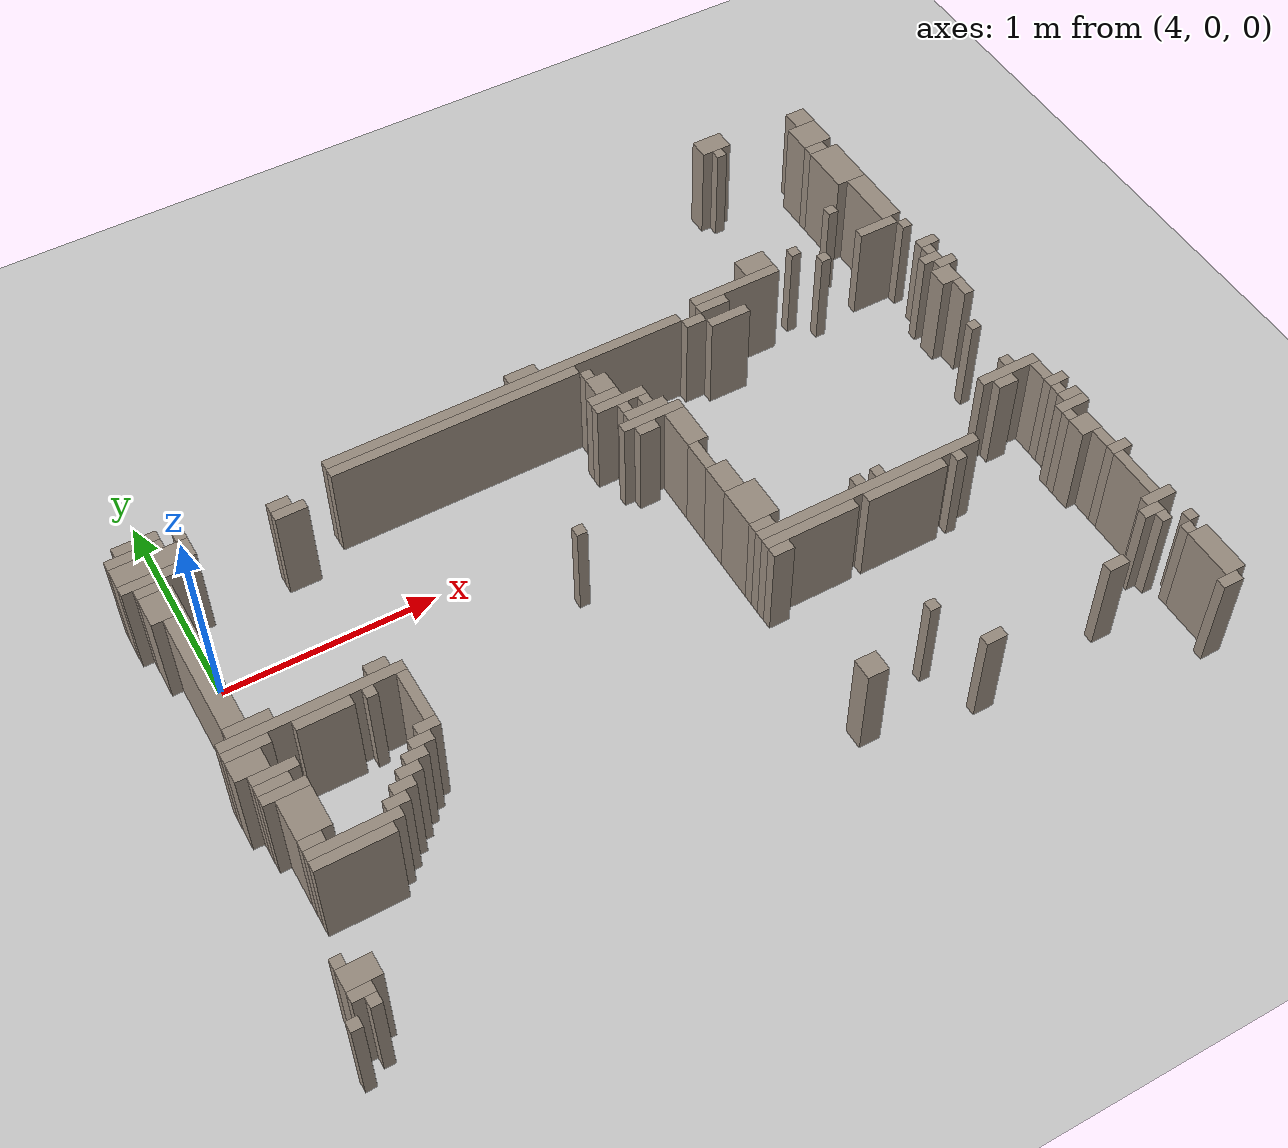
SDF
<sdf version="1.8">
 <world name="sala_real">
  <model name="ground_plane">
   <static>true</static>
   <link name="link">
    <collision name="col">
     <geometry><plane><normal>0 0 1</normal><size>100 100</size></plane></geometry>
    </collision>
    <visual name="vis">
     <geometry><plane><normal>0 0 1</normal><size>100 100</size></plane></geometry>
     <material><ambient>0.8 0.8 0.8 1</ambient><diffuse>0.8 0.8 0.8 1</diffuse></material>
    </visual>
   </link>
  </model>
  <model name="wall_123">
   <static>true</static>
   <pose>7.690 1.262 0.250 0 0 0</pose>
   <link name="link">
    <collision name="col"><geometry><box><size>0.150 0.150 0.500</size></box></geometry></collision>
    <visual name="vis">
     <geometry><box><size>0.150 0.150 0.500</size></box></geometry>
     <material><ambient>0.6 0.55 0.5 1</ambient><diffuse>0.6 0.55 0.5 1</diffuse></material>
    </visual>
   </link>
  </model>
  <model name="wall_131">
   <static>true</static>
   <pose>7.715 1.387 0.250 0 0 0</pose>
   <link name="link">
    <collision name="col"><geometry><box><size>0.100 0.100 0.500</size></box></geometry></collision>
    <visual name="vis">
     <geometry><box><size>0.100 0.100 0.500</size></box></geometry>
     <material><ambient>0.6 0.55 0.5 1</ambient><diffuse>0.6 0.55 0.5 1</diffuse></material>
    </visual>
   </link>
  </model>
  <model name="wall_142">
   <static>true</static>
   <pose>7.740 0.512 0.250 0 0 0</pose>
   <link name="link">
    <collision name="col"><geometry><box><size>0.050 0.050 0.500</size></box></geometry></collision>
    <visual name="vis">
     <geometry><box><size>0.050 0.050 0.500</size></box></geometry>
     <material><ambient>0.6 0.55 0.5 1</ambient><diffuse>0.6 0.55 0.5 1</diffuse></material>
    </visual>
   </link>
  </model>
  <model name="wall_146">
   <static>true</static>
   <pose>7.715 0.737 0.250 0 0 0</pose>
   <link name="link">
    <collision name="col"><geometry><box><size>0.100 0.300 0.500</size></box></geometry></collision>
    <visual name="vis">
     <geometry><box><size>0.100 0.300 0.500</size></box></geometry>
     <material><ambient>0.6 0.55 0.5 1</ambient><diffuse>0.6 0.55 0.5 1</diffuse></material>
    </visual>
   </link>
  </model>
  <model name="wall_148">
   <static>true</static>
   <pose>7.765 0.362 0.250 0 0 0</pose>
   <link name="link">
    <collision name="col"><geometry><box><size>0.100 0.050 0.500</size></box></geometry></collision>
    <visual name="vis">
     <geometry><box><size>0.100 0.050 0.500</size></box></geometry>
     <material><ambient>0.6 0.55 0.5 1</ambient><diffuse>0.6 0.55 0.5 1</diffuse></material>
    </visual>
   </link>
  </model>
  <model name="wall_151">
   <static>true</static>
   <pose>7.715 0.262 0.250 0 0 0</pose>
   <link name="link">
    <collision name="col"><geometry><box><size>0.100 0.050 0.500</size></box></geometry></collision>
    <visual name="vis">
     <geometry><box><size>0.100 0.050 0.500</size></box></geometry>
     <material><ambient>0.6 0.55 0.5 1</ambient><diffuse>0.6 0.55 0.5 1</diffuse></material>
    </visual>
   </link>
  </model>
  <model name="wall_154">
   <static>true</static>
   <pose>7.740 0.312 0.250 0 0 0</pose>
   <link name="link">
    <collision name="col"><geometry><box><size>0.050 0.050 0.500</size></box></geometry></collision>
    <visual name="vis">
     <geometry><box><size>0.050 0.050 0.500</size></box></geometry>
     <material><ambient>0.6 0.55 0.5 1</ambient><diffuse>0.6 0.55 0.5 1</diffuse></material>
    </visual>
   </link>
  </model>
  <model name="wall_165">
   <static>true</static>
   <pose>6.215 -0.063 0.250 0 0 0</pose>
   <link name="link">
    <collision name="col"><geometry><box><size>0.100 0.200 0.500</size></box></geometry></collision>
    <visual name="vis">
     <geometry><box><size>0.100 0.200 0.500</size></box></geometry>
     <material><ambient>0.6 0.55 0.5 1</ambient><diffuse>0.6 0.55 0.5 1</diffuse></material>
    </visual>
   </link>
  </model>
  <model name="wall_167">
   <static>true</static>
   <pose>7.640 -0.188 0.250 0 0 0</pose>
   <link name="link">
    <collision name="col"><geometry><box><size>0.050 0.050 0.500</size></box></geometry></collision>
    <visual name="vis">
     <geometry><box><size>0.050 0.050 0.500</size></box></geometry>
     <material><ambient>0.6 0.55 0.5 1</ambient><diffuse>0.6 0.55 0.5 1</diffuse></material>
    </visual>
   </link>
  </model>
  <model name="wall_170">
   <static>true</static>
   <pose>4.515 0.412 0.250 0 0 0</pose>
   <link name="link">
    <collision name="col"><geometry><box><size>0.100 0.050 0.500</size></box></geometry></collision>
    <visual name="vis">
     <geometry><box><size>0.100 0.050 0.500</size></box></geometry>
     <material><ambient>0.6 0.55 0.5 1</ambient><diffuse>0.6 0.55 0.5 1</diffuse></material>
    </visual>
   </link>
  </model>
  <model name="wall_172">
   <static>true</static>
   <pose>7.740 0.037 0.250 0 0 0</pose>
   <link name="link">
    <collision name="col"><geometry><box><size>0.050 0.100 0.500</size></box></geometry></collision>
    <visual name="vis">
     <geometry><box><size>0.050 0.100 0.500</size></box></geometry>
     <material><ambient>0.6 0.55 0.5 1</ambient><diffuse>0.6 0.55 0.5 1</diffuse></material>
    </visual>
   </link>
  </model>
  <model name="wall_174">
   <static>true</static>
   <pose>3.915 0.512 0.250 0 0 0</pose>
   <link name="link">
    <collision name="col"><geometry><box><size>0.200 0.050 0.500</size></box></geometry></collision>
    <visual name="vis">
     <geometry><box><size>0.200 0.050 0.500</size></box></geometry>
     <material><ambient>0.6 0.55 0.5 1</ambient><diffuse>0.6 0.55 0.5 1</diffuse></material>
    </visual>
   </link>
  </model>
  <model name="wall_177">
   <static>true</static>
   <pose>7.765 0.212 0.250 0 0 0</pose>
   <link name="link">
    <collision name="col"><geometry><box><size>0.100 0.050 0.500</size></box></geometry></collision>
    <visual name="vis">
     <geometry><box><size>0.100 0.050 0.500</size></box></geometry>
     <material><ambient>0.6 0.55 0.5 1</ambient><diffuse>0.6 0.55 0.5 1</diffuse></material>
    </visual>
   </link>
  </model>
  <model name="wall_179">
   <static>true</static>
   <pose>3.890 0.162 0.250 0 0 0</pose>
   <link name="link">
    <collision name="col"><geometry><box><size>0.150 0.150 0.500</size></box></geometry></collision>
    <visual name="vis">
     <geometry><box><size>0.150 0.150 0.500</size></box></geometry>
     <material><ambient>0.6 0.55 0.5 1</ambient><diffuse>0.6 0.55 0.5 1</diffuse></material>
    </visual>
   </link>
  </model>
  <model name="wall_180">
   <static>true</static>
   <pose>6.215 -0.388 0.250 0 0 0</pose>
   <link name="link">
    <collision name="col"><geometry><box><size>0.100 0.150 0.500</size></box></geometry></collision>
    <visual name="vis">
     <geometry><box><size>0.100 0.150 0.500</size></box></geometry>
     <material><ambient>0.6 0.55 0.5 1</ambient><diffuse>0.6 0.55 0.5 1</diffuse></material>
    </visual>
   </link>
  </model>
  <model name="wall_183">
   <static>true</static>
   <pose>7.740 -0.563 0.250 0 0 0</pose>
   <link name="link">
    <collision name="col"><geometry><box><size>0.050 0.100 0.500</size></box></geometry></collision>
    <visual name="vis">
     <geometry><box><size>0.050 0.100 0.500</size></box></geometry>
     <material><ambient>0.6 0.55 0.5 1</ambient><diffuse>0.6 0.55 0.5 1</diffuse></material>
    </visual>
   </link>
  </model>
  <model name="wall_184">
   <static>true</static>
   <pose>7.765 -0.638 0.250 0 0 0</pose>
   <link name="link">
    <collision name="col"><geometry><box><size>0.100 0.050 0.500</size></box></geometry></collision>
    <visual name="vis">
     <geometry><box><size>0.100 0.050 0.500</size></box></geometry>
     <material><ambient>0.6 0.55 0.5 1</ambient><diffuse>0.6 0.55 0.5 1</diffuse></material>
    </visual>
   </link>
  </model>
  <model name="wall_185">
   <static>true</static>
   <pose>3.965 -0.538 0.250 0 0 0</pose>
   <link name="link">
    <collision name="col"><geometry><box><size>0.200 0.050 0.500</size></box></geometry></collision>
    <visual name="vis">
     <geometry><box><size>0.200 0.050 0.500</size></box></geometry>
     <material><ambient>0.6 0.55 0.5 1</ambient><diffuse>0.6 0.55 0.5 1</diffuse></material>
    </visual>
   </link>
  </model>
  <model name="wall_190">
   <static>true</static>
   <pose>6.215 -0.688 0.250 0 0 0</pose>
   <link name="link">
    <collision name="col"><geometry><box><size>0.100 0.050 0.500</size></box></geometry></collision>
    <visual name="vis">
     <geometry><box><size>0.100 0.050 0.500</size></box></geometry>
     <material><ambient>0.6 0.55 0.5 1</ambient><diffuse>0.6 0.55 0.5 1</diffuse></material>
    </visual>
   </link>
  </model>
  <model name="wall_194">
   <static>true</static>
   <pose>3.965 -0.788 0.250 0 0 0</pose>
   <link name="link">
    <collision name="col"><geometry><box><size>0.200 0.050 0.500</size></box></geometry></collision>
    <visual name="vis">
     <geometry><box><size>0.200 0.050 0.500</size></box></geometry>
     <material><ambient>0.6 0.55 0.5 1</ambient><diffuse>0.6 0.55 0.5 1</diffuse></material>
    </visual>
   </link>
  </model>
  <model name="wall_195">
   <static>true</static>
   <pose>7.715 0.137 0.250 0 0 0</pose>
   <link name="link">
    <collision name="col"><geometry><box><size>0.100 0.100 0.500</size></box></geometry></collision>
    <visual name="vis">
     <geometry><box><size>0.100 0.100 0.500</size></box></geometry>
     <material><ambient>0.6 0.55 0.5 1</ambient><diffuse>0.6 0.55 0.5 1</diffuse></material>
    </visual>
   </link>
  </model>
  <model name="wall_199">
   <static>true</static>
   <pose>4.515 -0.538 0.250 0 0 0</pose>
   <link name="link">
    <collision name="col"><geometry><box><size>0.100 0.050 0.500</size></box></geometry></collision>
    <visual name="vis">
     <geometry><box><size>0.100 0.050 0.500</size></box></geometry>
     <material><ambient>0.6 0.55 0.5 1</ambient><diffuse>0.6 0.55 0.5 1</diffuse></material>
    </visual>
   </link>
  </model>
  <model name="wall_204">
   <static>true</static>
   <pose>7.740 -0.688 0.250 0 0 0</pose>
   <link name="link">
    <collision name="col"><geometry><box><size>0.050 0.050 0.500</size></box></geometry></collision>
    <visual name="vis">
     <geometry><box><size>0.050 0.050 0.500</size></box></geometry>
     <material><ambient>0.6 0.55 0.5 1</ambient><diffuse>0.6 0.55 0.5 1</diffuse></material>
    </visual>
   </link>
  </model>
  <model name="wall_205">
   <static>true</static>
   <pose>7.765 -0.738 0.250 0 0 0</pose>
   <link name="link">
    <collision name="col"><geometry><box><size>0.100 0.050 0.500</size></box></geometry></collision>
    <visual name="vis">
     <geometry><box><size>0.100 0.050 0.500</size></box></geometry>
     <material><ambient>0.6 0.55 0.5 1</ambient><diffuse>0.6 0.55 0.5 1</diffuse></material>
    </visual>
   </link>
  </model>
  <model name="wall_210">
   <static>true</static>
   <pose>7.740 -1.013 0.250 0 0 0</pose>
   <link name="link">
    <collision name="col"><geometry><box><size>0.050 0.100 0.500</size></box></geometry></collision>
    <visual name="vis">
     <geometry><box><size>0.050 0.100 0.500</size></box></geometry>
     <material><ambient>0.6 0.55 0.5 1</ambient><diffuse>0.6 0.55 0.5 1</diffuse></material>
    </visual>
   </link>
  </model>
  <model name="wall_218">
   <static>true</static>
   <pose>7.740 -0.788 0.250 0 0 0</pose>
   <link name="link">
    <collision name="col"><geometry><box><size>0.150 0.050 0.500</size></box></geometry></collision>
    <visual name="vis">
     <geometry><box><size>0.150 0.050 0.500</size></box></geometry>
     <material><ambient>0.6 0.55 0.5 1</ambient><diffuse>0.6 0.55 0.5 1</diffuse></material>
    </visual>
   </link>
  </model>
  <model name="wall_222">
   <static>true</static>
   <pose>7.665 1.162 0.250 0 0 0</pose>
   <link name="link">
    <collision name="col"><geometry><box><size>0.100 0.050 0.500</size></box></geometry></collision>
    <visual name="vis">
     <geometry><box><size>0.100 0.050 0.500</size></box></geometry>
     <material><ambient>0.6 0.55 0.5 1</ambient><diffuse>0.6 0.55 0.5 1</diffuse></material>
    </visual>
   </link>
  </model>
  <model name="wall_229">
   <static>true</static>
   <pose>6.215 -0.838 0.250 0 0 0</pose>
   <link name="link">
    <collision name="col"><geometry><box><size>0.100 0.050 0.500</size></box></geometry></collision>
    <visual name="vis">
     <geometry><box><size>0.100 0.050 0.500</size></box></geometry>
     <material><ambient>0.6 0.55 0.5 1</ambient><diffuse>0.6 0.55 0.5 1</diffuse></material>
    </visual>
   </link>
  </model>
  <model name="wall_230">
   <static>true</static>
   <pose>7.690 -0.838 0.250 0 0 0</pose>
   <link name="link">
    <collision name="col"><geometry><box><size>0.050 0.050 0.500</size></box></geometry></collision>
    <visual name="vis">
     <geometry><box><size>0.050 0.050 0.500</size></box></geometry>
     <material><ambient>0.6 0.55 0.5 1</ambient><diffuse>0.6 0.55 0.5 1</diffuse></material>
    </visual>
   </link>
  </model>
  <model name="wall_239">
   <static>true</static>
   <pose>7.740 -1.238 0.250 0 0 0</pose>
   <link name="link">
    <collision name="col"><geometry><box><size>0.050 0.250 0.500</size></box></geometry></collision>
    <visual name="vis">
     <geometry><box><size>0.050 0.250 0.500</size></box></geometry>
     <material><ambient>0.6 0.55 0.5 1</ambient><diffuse>0.6 0.55 0.5 1</diffuse></material>
    </visual>
   </link>
  </model>
  <model name="wall_242">
   <static>true</static>
   <pose>7.765 -1.088 0.250 0 0 0</pose>
   <link name="link">
    <collision name="col"><geometry><box><size>0.100 0.050 0.500</size></box></geometry></collision>
    <visual name="vis">
     <geometry><box><size>0.100 0.050 0.500</size></box></geometry>
     <material><ambient>0.6 0.55 0.5 1</ambient><diffuse>0.6 0.55 0.5 1</diffuse></material>
    </visual>
   </link>
  </model>
  <model name="wall_246">
   <static>true</static>
   <pose>3.890 -0.713 0.250 0 0 0</pose>
   <link name="link">
    <collision name="col"><geometry><box><size>0.150 0.100 0.500</size></box></geometry></collision>
    <visual name="vis">
     <geometry><box><size>0.150 0.100 0.500</size></box></geometry>
     <material><ambient>0.6 0.55 0.5 1</ambient><diffuse>0.6 0.55 0.5 1</diffuse></material>
    </visual>
   </link>
  </model>
  <model name="wall_256">
   <static>true</static>
   <pose>3.865 0.262 0.250 0 0 0</pose>
   <link name="link">
    <collision name="col"><geometry><box><size>0.100 0.050 0.500</size></box></geometry></collision>
    <visual name="vis">
     <geometry><box><size>0.100 0.050 0.500</size></box></geometry>
     <material><ambient>0.6 0.55 0.5 1</ambient><diffuse>0.6 0.55 0.5 1</diffuse></material>
    </visual>
   </link>
  </model>
  <model name="wall_271">
   <static>true</static>
   <pose>6.215 -1.513 0.250 0 0 0</pose>
   <link name="link">
    <collision name="col"><geometry><box><size>0.100 0.100 0.500</size></box></geometry></collision>
    <visual name="vis">
     <geometry><box><size>0.100 0.100 0.500</size></box></geometry>
     <material><ambient>0.6 0.55 0.5 1</ambient><diffuse>0.6 0.55 0.5 1</diffuse></material>
    </visual>
   </link>
  </model>
  <model name="wall_272">
   <static>true</static>
   <pose>7.715 -0.913 0.250 0 0 0</pose>
   <link name="link">
    <collision name="col"><geometry><box><size>0.100 0.100 0.500</size></box></geometry></collision>
    <visual name="vis">
     <geometry><box><size>0.100 0.100 0.500</size></box></geometry>
     <material><ambient>0.6 0.55 0.5 1</ambient><diffuse>0.6 0.55 0.5 1</diffuse></material>
    </visual>
   </link>
  </model>
  <model name="wall_278">
   <static>true</static>
   <pose>7.690 -1.488 0.250 0 0 0</pose>
   <link name="link">
    <collision name="col"><geometry><box><size>0.050 0.050 0.500</size></box></geometry></collision>
    <visual name="vis">
     <geometry><box><size>0.050 0.050 0.500</size></box></geometry>
     <material><ambient>0.6 0.55 0.5 1</ambient><diffuse>0.6 0.55 0.5 1</diffuse></material>
    </visual>
   </link>
  </model>
  <model name="wall_280">
   <static>true</static>
   <pose>3.790 -1.888 0.250 0 0 0</pose>
   <link name="link">
    <collision name="col"><geometry><box><size>0.050 0.050 0.500</size></box></geometry></collision>
    <visual name="vis">
     <geometry><box><size>0.050 0.050 0.500</size></box></geometry>
     <material><ambient>0.6 0.55 0.5 1</ambient><diffuse>0.6 0.55 0.5 1</diffuse></material>
    </visual>
   </link>
  </model>
  <model name="wall_281">
   <static>true</static>
   <pose>4.465 -0.988 0.250 0 0 0</pose>
   <link name="link">
    <collision name="col"><geometry><box><size>0.100 0.050 0.500</size></box></geometry></collision>
    <visual name="vis">
     <geometry><box><size>0.100 0.050 0.500</size></box></geometry>
     <material><ambient>0.6 0.55 0.5 1</ambient><diffuse>0.6 0.55 0.5 1</diffuse></material>
    </visual>
   </link>
  </model>
  <model name="wall_282">
   <static>true</static>
   <pose>6.690 -0.688 0.250 0 0 0</pose>
   <link name="link">
    <collision name="col"><geometry><box><size>0.050 0.050 0.500</size></box></geometry></collision>
    <visual name="vis">
     <geometry><box><size>0.050 0.050 0.500</size></box></geometry>
     <material><ambient>0.6 0.55 0.5 1</ambient><diffuse>0.6 0.55 0.5 1</diffuse></material>
    </visual>
   </link>
  </model>
  <model name="wall_283">
   <static>true</static>
   <pose>7.140 -0.788 0.250 0 0 0</pose>
   <link name="link">
    <collision name="col"><geometry><box><size>0.050 0.050 0.500</size></box></geometry></collision>
    <visual name="vis">
     <geometry><box><size>0.050 0.050 0.500</size></box></geometry>
     <material><ambient>0.6 0.55 0.5 1</ambient><diffuse>0.6 0.55 0.5 1</diffuse></material>
    </visual>
   </link>
  </model>
  <model name="wall_284">
   <static>true</static>
   <pose>7.240 1.362 0.250 0 0 0</pose>
   <link name="link">
    <collision name="col"><geometry><box><size>0.050 0.050 0.500</size></box></geometry></collision>
    <visual name="vis">
     <geometry><box><size>0.050 0.050 0.500</size></box></geometry>
     <material><ambient>0.6 0.55 0.5 1</ambient><diffuse>0.6 0.55 0.5 1</diffuse></material>
    </visual>
   </link>
  </model>
  <model name="wall_288">
   <static>true</static>
   <pose>6.240 -0.563 0.250 0 0 0</pose>
   <link name="link">
    <collision name="col"><geometry><box><size>0.150 0.200 0.500</size></box></geometry></collision>
    <visual name="vis">
     <geometry><box><size>0.150 0.200 0.500</size></box></geometry>
     <material><ambient>0.6 0.55 0.5 1</ambient><diffuse>0.6 0.55 0.5 1</diffuse></material>
    </visual>
   </link>
  </model>
  <model name="wall_291">
   <static>true</static>
   <pose>6.590 -1.388 0.250 0 0 0</pose>
   <link name="link">
    <collision name="col"><geometry><box><size>0.050 0.050 0.500</size></box></geometry></collision>
    <visual name="vis">
     <geometry><box><size>0.050 0.050 0.500</size></box></geometry>
     <material><ambient>0.6 0.55 0.5 1</ambient><diffuse>0.6 0.55 0.5 1</diffuse></material>
    </visual>
   </link>
  </model>
  <model name="wall_295">
   <static>true</static>
   <pose>7.790 -1.538 0.250 0 0 0</pose>
   <link name="link">
    <collision name="col"><geometry><box><size>0.050 0.050 0.500</size></box></geometry></collision>
    <visual name="vis">
     <geometry><box><size>0.050 0.050 0.500</size></box></geometry>
     <material><ambient>0.6 0.55 0.5 1</ambient><diffuse>0.6 0.55 0.5 1</diffuse></material>
    </visual>
   </link>
  </model>
  <model name="wall_298">
   <static>true</static>
   <pose>7.765 -1.738 0.250 0 0 0</pose>
   <link name="link">
    <collision name="col"><geometry><box><size>0.100 0.250 0.500</size></box></geometry></collision>
    <visual name="vis">
     <geometry><box><size>0.100 0.250 0.500</size></box></geometry>
     <material><ambient>0.6 0.55 0.5 1</ambient><diffuse>0.6 0.55 0.5 1</diffuse></material>
    </visual>
   </link>
  </model>
  <model name="wall_301">
   <static>true</static>
   <pose>6.790 -0.688 0.250 0 0 0</pose>
   <link name="link">
    <collision name="col"><geometry><box><size>0.050 0.050 0.500</size></box></geometry></collision>
    <visual name="vis">
     <geometry><box><size>0.050 0.050 0.500</size></box></geometry>
     <material><ambient>0.6 0.55 0.5 1</ambient><diffuse>0.6 0.55 0.5 1</diffuse></material>
    </visual>
   </link>
  </model>
  <model name="wall_302">
   <static>true</static>
   <pose>7.290 0.512 0.250 0 0 0</pose>
   <link name="link">
    <collision name="col"><geometry><box><size>0.050 0.050 0.500</size></box></geometry></collision>
    <visual name="vis">
     <geometry><box><size>0.050 0.050 0.500</size></box></geometry>
     <material><ambient>0.6 0.55 0.5 1</ambient><diffuse>0.6 0.55 0.5 1</diffuse></material>
    </visual>
   </link>
  </model>
  <model name="wall_307">
   <static>true</static>
   <pose>3.865 -1.788 0.250 0 0 0</pose>
   <link name="link">
    <collision name="col"><geometry><box><size>0.100 0.050 0.500</size></box></geometry></collision>
    <visual name="vis">
     <geometry><box><size>0.100 0.050 0.500</size></box></geometry>
     <material><ambient>0.6 0.55 0.5 1</ambient><diffuse>0.6 0.55 0.5 1</diffuse></material>
    </visual>
   </link>
  </model>
  <model name="wall_308">
   <static>true</static>
   <pose>3.890 -1.713 0.250 0 0 0</pose>
   <link name="link">
    <collision name="col"><geometry><box><size>0.150 0.100 0.500</size></box></geometry></collision>
    <visual name="vis">
     <geometry><box><size>0.150 0.100 0.500</size></box></geometry>
     <material><ambient>0.6 0.55 0.5 1</ambient><diffuse>0.6 0.55 0.5 1</diffuse></material>
    </visual>
   </link>
  </model>
  <model name="wall_318">
   <static>true</static>
   <pose>7.715 -1.888 0.250 0 0 0</pose>
   <link name="link">
    <collision name="col"><geometry><box><size>0.100 0.050 0.500</size></box></geometry></collision>
    <visual name="vis">
     <geometry><box><size>0.100 0.050 0.500</size></box></geometry>
     <material><ambient>0.6 0.55 0.5 1</ambient><diffuse>0.6 0.55 0.5 1</diffuse></material>
    </visual>
   </link>
  </model>
  <model name="wall_319">
   <static>true</static>
   <pose>7.740 -1.388 0.250 0 0 0</pose>
   <link name="link">
    <collision name="col"><geometry><box><size>0.150 0.050 0.500</size></box></geometry></collision>
    <visual name="vis">
     <geometry><box><size>0.150 0.050 0.500</size></box></geometry>
     <material><ambient>0.6 0.55 0.5 1</ambient><diffuse>0.6 0.55 0.5 1</diffuse></material>
    </visual>
   </link>
  </model>
  <model name="wall_322">
   <static>true</static>
   <pose>3.940 -0.838 0.250 0 0 0</pose>
   <link name="link">
    <collision name="col"><geometry><box><size>0.150 0.050 0.500</size></box></geometry></collision>
    <visual name="vis">
     <geometry><box><size>0.150 0.050 0.500</size></box></geometry>
     <material><ambient>0.6 0.55 0.5 1</ambient><diffuse>0.6 0.55 0.5 1</diffuse></material>
    </visual>
   </link>
  </model>
  <model name="wall_327">
   <static>true</static>
   <pose>4.365 -1.088 0.250 0 0 0</pose>
   <link name="link">
    <collision name="col"><geometry><box><size>0.100 0.050 0.500</size></box></geometry></collision>
    <visual name="vis">
     <geometry><box><size>0.100 0.050 0.500</size></box></geometry>
     <material><ambient>0.6 0.55 0.5 1</ambient><diffuse>0.6 0.55 0.5 1</diffuse></material>
    </visual>
   </link>
  </model>
  <model name="wall_332">
   <static>true</static>
   <pose>3.890 -1.838 0.250 0 0 0</pose>
   <link name="link">
    <collision name="col"><geometry><box><size>0.050 0.050 0.500</size></box></geometry></collision>
    <visual name="vis">
     <geometry><box><size>0.050 0.050 0.500</size></box></geometry>
     <material><ambient>0.6 0.55 0.5 1</ambient><diffuse>0.6 0.55 0.5 1</diffuse></material>
    </visual>
   </link>
  </model>
  <model name="wall_339">
   <static>true</static>
   <pose>7.690 1.012 0.250 0 0 0</pose>
   <link name="link">
    <collision name="col"><geometry><box><size>0.150 0.250 0.500</size></box></geometry></collision>
    <visual name="vis">
     <geometry><box><size>0.150 0.250 0.500</size></box></geometry>
     <material><ambient>0.6 0.55 0.5 1</ambient><diffuse>0.6 0.55 0.5 1</diffuse></material>
    </visual>
   </link>
  </model>
  <model name="wall_340">
   <static>true</static>
   <pose>3.915 -0.213 0.250 0 0 0</pose>
   <link name="link">
    <collision name="col"><geometry><box><size>0.100 0.600 0.500</size></box></geometry></collision>
    <visual name="vis">
     <geometry><box><size>0.100 0.600 0.500</size></box></geometry>
     <material><ambient>0.6 0.55 0.5 1</ambient><diffuse>0.6 0.55 0.5 1</diffuse></material>
    </visual>
   </link>
  </model>
  <model name="wall_341">
   <static>true</static>
   <pose>6.140 0.162 0.250 0 0 0</pose>
   <link name="link">
    <collision name="col"><geometry><box><size>0.050 0.050 0.500</size></box></geometry></collision>
    <visual name="vis">
     <geometry><box><size>0.050 0.050 0.500</size></box></geometry>
     <material><ambient>0.6 0.55 0.5 1</ambient><diffuse>0.6 0.55 0.5 1</diffuse></material>
    </visual>
   </link>
  </model>
  <model name="wall_342">
   <static>true</static>
   <pose>7.190 0.612 0.250 0 0 0</pose>
   <link name="link">
    <collision name="col"><geometry><box><size>0.050 0.050 0.500</size></box></geometry></collision>
    <visual name="vis">
     <geometry><box><size>0.050 0.050 0.500</size></box></geometry>
     <material><ambient>0.6 0.55 0.5 1</ambient><diffuse>0.6 0.55 0.5 1</diffuse></material>
    </visual>
   </link>
  </model>
  <model name="wall_343">
   <static>true</static>
   <pose>7.740 -1.588 0.250 0 0 0</pose>
   <link name="link">
    <collision name="col"><geometry><box><size>0.050 0.050 0.500</size></box></geometry></collision>
    <visual name="vis">
     <geometry><box><size>0.050 0.050 0.500</size></box></geometry>
     <material><ambient>0.6 0.55 0.5 1</ambient><diffuse>0.6 0.55 0.5 1</diffuse></material>
    </visual>
   </link>
  </model>
  <model name="wall_353">
   <static>true</static>
   <pose>4.440 -0.638 0.250 0 0 0</pose>
   <link name="link">
    <collision name="col"><geometry><box><size>0.050 0.050 0.500</size></box></geometry></collision>
    <visual name="vis">
     <geometry><box><size>0.050 0.050 0.500</size></box></geometry>
     <material><ambient>0.6 0.55 0.5 1</ambient><diffuse>0.6 0.55 0.5 1</diffuse></material>
    </visual>
   </link>
  </model>
  <model name="wall_360">
   <static>true</static>
   <pose>6.015 0.337 0.250 0 0 0</pose>
   <link name="link">
    <collision name="col"><geometry><box><size>0.100 0.100 0.500</size></box></geometry></collision>
    <visual name="vis">
     <geometry><box><size>0.100 0.100 0.500</size></box></geometry>
     <material><ambient>0.6 0.55 0.5 1</ambient><diffuse>0.6 0.55 0.5 1</diffuse></material>
    </visual>
   </link>
  </model>
  <model name="wall_366">
   <static>true</static>
   <pose>7.665 -1.438 0.250 0 0 0</pose>
   <link name="link">
    <collision name="col"><geometry><box><size>0.100 0.050 0.500</size></box></geometry></collision>
    <visual name="vis">
     <geometry><box><size>0.100 0.050 0.500</size></box></geometry>
     <material><ambient>0.6 0.55 0.5 1</ambient><diffuse>0.6 0.55 0.5 1</diffuse></material>
    </visual>
   </link>
  </model>
  <model name="wall_369">
   <static>true</static>
   <pose>7.640 -0.438 0.250 0 0 0</pose>
   <link name="link">
    <collision name="col"><geometry><box><size>0.050 0.050 0.500</size></box></geometry></collision>
    <visual name="vis">
     <geometry><box><size>0.050 0.050 0.500</size></box></geometry>
     <material><ambient>0.6 0.55 0.5 1</ambient><diffuse>0.6 0.55 0.5 1</diffuse></material>
    </visual>
   </link>
  </model>
  <model name="wall_371">
   <static>true</static>
   <pose>6.190 -0.238 0.250 0 0 0</pose>
   <link name="link">
    <collision name="col"><geometry><box><size>0.050 0.150 0.500</size></box></geometry></collision>
    <visual name="vis">
     <geometry><box><size>0.050 0.150 0.500</size></box></geometry>
     <material><ambient>0.6 0.55 0.5 1</ambient><diffuse>0.6 0.55 0.5 1</diffuse></material>
    </visual>
   </link>
  </model>
  <model name="wall_380">
   <static>true</static>
   <pose>5.990 0.412 0.250 0 0 0</pose>
   <link name="link">
    <collision name="col"><geometry><box><size>0.050 0.050 0.500</size></box></geometry></collision>
    <visual name="vis">
     <geometry><box><size>0.050 0.050 0.500</size></box></geometry>
     <material><ambient>0.6 0.55 0.5 1</ambient><diffuse>0.6 0.55 0.5 1</diffuse></material>
    </visual>
   </link>
  </model>
  <model name="wall_392">
   <static>true</static>
   <pose>3.965 -1.138 0.250 0 0 0</pose>
   <link name="link">
    <collision name="col"><geometry><box><size>0.100 0.050 0.500</size></box></geometry></collision>
    <visual name="vis">
     <geometry><box><size>0.100 0.050 0.500</size></box></geometry>
     <material><ambient>0.6 0.55 0.5 1</ambient><diffuse>0.6 0.55 0.5 1</diffuse></material>
    </visual>
   </link>
  </model>
  <model name="wall_613">
   <static>true</static>
   <pose>6.565 0.462 0.250 0 0 0</pose>
   <link name="link">
    <collision name="col"><geometry><box><size>0.100 0.050 0.500</size></box></geometry></collision>
    <visual name="vis">
     <geometry><box><size>0.100 0.050 0.500</size></box></geometry>
     <material><ambient>0.6 0.55 0.5 1</ambient><diffuse>0.6 0.55 0.5 1</diffuse></material>
    </visual>
   </link>
  </model>
  <model name="wall_614">
   <static>true</static>
   <pose>4.090 0.462 0.250 0 0 0</pose>
   <link name="link">
    <collision name="col"><geometry><box><size>0.050 0.050 0.500</size></box></geometry></collision>
    <visual name="vis">
     <geometry><box><size>0.050 0.050 0.500</size></box></geometry>
     <material><ambient>0.6 0.55 0.5 1</ambient><diffuse>0.6 0.55 0.5 1</diffuse></material>
    </visual>
   </link>
  </model>
  <model name="wall_703">
   <static>true</static>
   <pose>5.990 0.262 0.250 0 0 0</pose>
   <link name="link">
    <collision name="col"><geometry><box><size>0.150 0.050 0.500</size></box></geometry></collision>
    <visual name="vis">
     <geometry><box><size>0.150 0.050 0.500</size></box></geometry>
     <material><ambient>0.6 0.55 0.5 1</ambient><diffuse>0.6 0.55 0.5 1</diffuse></material>
    </visual>
   </link>
  </model>
  <model name="wall_726">
   <static>true</static>
   <pose>3.890 0.462 0.250 0 0 0</pose>
   <link name="link">
    <collision name="col"><geometry><box><size>0.250 0.050 0.500</size></box></geometry></collision>
    <visual name="vis">
     <geometry><box><size>0.250 0.050 0.500</size></box></geometry>
     <material><ambient>0.6 0.55 0.5 1</ambient><diffuse>0.6 0.55 0.5 1</diffuse></material>
    </visual>
   </link>
  </model>
  <model name="wall_743">
   <static>true</static>
   <pose>5.740 0.562 0.250 0 0 0</pose>
   <link name="link">
    <collision name="col"><geometry><box><size>0.150 0.050 0.500</size></box></geometry></collision>
    <visual name="vis">
     <geometry><box><size>0.150 0.050 0.500</size></box></geometry>
     <material><ambient>0.6 0.55 0.5 1</ambient><diffuse>0.6 0.55 0.5 1</diffuse></material>
    </visual>
   </link>
  </model>
  <model name="wall_744">
   <static>true</static>
   <pose>6.065 0.012 0.250 0 0 0</pose>
   <link name="link">
    <collision name="col"><geometry><box><size>0.100 0.050 0.500</size></box></geometry></collision>
    <visual name="vis">
     <geometry><box><size>0.100 0.050 0.500</size></box></geometry>
     <material><ambient>0.6 0.55 0.5 1</ambient><diffuse>0.6 0.55 0.5 1</diffuse></material>
    </visual>
   </link>
  </model>
  <model name="wall_750">
   <static>true</static>
   <pose>6.040 0.162 0.250 0 0 0</pose>
   <link name="link">
    <collision name="col"><geometry><box><size>0.050 0.050 0.500</size></box></geometry></collision>
    <visual name="vis">
     <geometry><box><size>0.050 0.050 0.500</size></box></geometry>
     <material><ambient>0.6 0.55 0.5 1</ambient><diffuse>0.6 0.55 0.5 1</diffuse></material>
    </visual>
   </link>
  </model>
  <model name="wall_763">
   <static>true</static>
   <pose>7.565 -0.538 0.250 0 0 0</pose>
   <link name="link">
    <collision name="col"><geometry><box><size>0.100 0.050 0.500</size></box></geometry></collision>
    <visual name="vis">
     <geometry><box><size>0.100 0.050 0.500</size></box></geometry>
     <material><ambient>0.6 0.55 0.5 1</ambient><diffuse>0.6 0.55 0.5 1</diffuse></material>
    </visual>
   </link>
  </model>
  <model name="wall_765">
   <static>true</static>
   <pose>3.965 -0.888 0.250 0 0 0</pose>
   <link name="link">
    <collision name="col"><geometry><box><size>0.200 0.050 0.500</size></box></geometry></collision>
    <visual name="vis">
     <geometry><box><size>0.200 0.050 0.500</size></box></geometry>
     <material><ambient>0.6 0.55 0.5 1</ambient><diffuse>0.6 0.55 0.5 1</diffuse></material>
    </visual>
   </link>
  </model>
  <model name="wall_781">
   <static>true</static>
   <pose>3.990 -1.013 0.250 0 0 0</pose>
   <link name="link">
    <collision name="col"><geometry><box><size>0.150 0.200 0.500</size></box></geometry></collision>
    <visual name="vis">
     <geometry><box><size>0.150 0.200 0.500</size></box></geometry>
     <material><ambient>0.6 0.55 0.5 1</ambient><diffuse>0.6 0.55 0.5 1</diffuse></material>
    </visual>
   </link>
  </model>
  <model name="wall_784">
   <static>true</static>
   <pose>4.590 -0.738 0.250 0 0 0</pose>
   <link name="link">
    <collision name="col"><geometry><box><size>0.050 0.250 0.500</size></box></geometry></collision>
    <visual name="vis">
     <geometry><box><size>0.050 0.250 0.500</size></box></geometry>
     <material><ambient>0.6 0.55 0.5 1</ambient><diffuse>0.6 0.55 0.5 1</diffuse></material>
    </visual>
   </link>
  </model>
  <model name="wall_837">
   <static>true</static>
   <pose>7.240 1.437 0.250 0 0 0</pose>
   <link name="link">
    <collision name="col"><geometry><box><size>0.150 0.100 0.500</size></box></geometry></collision>
    <visual name="vis">
     <geometry><box><size>0.150 0.100 0.500</size></box></geometry>
     <material><ambient>0.6 0.55 0.5 1</ambient><diffuse>0.6 0.55 0.5 1</diffuse></material>
    </visual>
   </link>
  </model>
  <model name="wall_848">
   <static>true</static>
   <pose>7.490 0.762 0.250 0 0 0</pose>
   <link name="link">
    <collision name="col"><geometry><box><size>0.050 0.050 0.500</size></box></geometry></collision>
    <visual name="vis">
     <geometry><box><size>0.050 0.050 0.500</size></box></geometry>
     <material><ambient>0.6 0.55 0.5 1</ambient><diffuse>0.6 0.55 0.5 1</diffuse></material>
    </visual>
   </link>
  </model>
  <model name="wall_849">
   <static>true</static>
   <pose>6.990 0.637 0.250 0 0 0</pose>
   <link name="link">
    <collision name="col"><geometry><box><size>0.150 0.100 0.500</size></box></geometry></collision>
    <visual name="vis">
     <geometry><box><size>0.150 0.100 0.500</size></box></geometry>
     <material><ambient>0.6 0.55 0.5 1</ambient><diffuse>0.6 0.55 0.5 1</diffuse></material>
    </visual>
   </link>
  </model>
  <model name="wall_851">
   <static>true</static>
   <pose>6.840 0.562 0.250 0 0 0</pose>
   <link name="link">
    <collision name="col"><geometry><box><size>0.450 0.050 0.500</size></box></geometry></collision>
    <visual name="vis">
     <geometry><box><size>0.450 0.050 0.500</size></box></geometry>
     <material><ambient>0.6 0.55 0.5 1</ambient><diffuse>0.6 0.55 0.5 1</diffuse></material>
    </visual>
   </link>
  </model>
  <model name="wall_852">
   <static>true</static>
   <pose>7.615 0.562 0.250 0 0 0</pose>
   <link name="link">
    <collision name="col"><geometry><box><size>0.200 0.050 0.500</size></box></geometry></collision>
    <visual name="vis">
     <geometry><box><size>0.200 0.050 0.500</size></box></geometry>
     <material><ambient>0.6 0.55 0.5 1</ambient><diffuse>0.6 0.55 0.5 1</diffuse></material>
    </visual>
   </link>
  </model>
  <model name="wall_854">
   <static>true</static>
   <pose>3.915 -0.638 0.250 0 0 0</pose>
   <link name="link">
    <collision name="col"><geometry><box><size>0.200 0.050 0.500</size></box></geometry></collision>
    <visual name="vis">
     <geometry><box><size>0.200 0.050 0.500</size></box></geometry>
     <material><ambient>0.6 0.55 0.5 1</ambient><diffuse>0.6 0.55 0.5 1</diffuse></material>
    </visual>
   </link>
  </model>
  <model name="wall_855">
   <static>true</static>
   <pose>5.640 0.512 0.250 0 0 0</pose>
   <link name="link">
    <collision name="col"><geometry><box><size>1.750 0.050 0.500</size></box></geometry></collision>
    <visual name="vis">
     <geometry><box><size>1.750 0.050 0.500</size></box></geometry>
     <material><ambient>0.6 0.55 0.5 1</ambient><diffuse>0.6 0.55 0.5 1</diffuse></material>
    </visual>
   </link>
  </model>
  <model name="wall_856">
   <static>true</static>
   <pose>6.690 0.512 0.250 0 0 0</pose>
   <link name="link">
    <collision name="col"><geometry><box><size>0.150 0.050 0.500</size></box></geometry></collision>
    <visual name="vis">
     <geometry><box><size>0.150 0.050 0.500</size></box></geometry>
     <material><ambient>0.6 0.55 0.5 1</ambient><diffuse>0.6 0.55 0.5 1</diffuse></material>
    </visual>
   </link>
  </model>
  <model name="wall_859">
   <static>true</static>
   <pose>5.365 0.462 0.250 0 0 0</pose>
   <link name="link">
    <collision name="col"><geometry><box><size>1.200 0.050 0.500</size></box></geometry></collision>
    <visual name="vis">
     <geometry><box><size>1.200 0.050 0.500</size></box></geometry>
     <material><ambient>0.6 0.55 0.5 1</ambient><diffuse>0.6 0.55 0.5 1</diffuse></material>
    </visual>
   </link>
  </model>
  <model name="wall_860">
   <static>true</static>
   <pose>3.940 0.387 0.250 0 0 0</pose>
   <link name="link">
    <collision name="col"><geometry><box><size>0.350 0.100 0.500</size></box></geometry></collision>
    <visual name="vis">
     <geometry><box><size>0.350 0.100 0.500</size></box></geometry>
     <material><ambient>0.6 0.55 0.5 1</ambient><diffuse>0.6 0.55 0.5 1</diffuse></material>
    </visual>
   </link>
  </model>
  <model name="wall_861">
   <static>true</static>
   <pose>4.515 -0.938 0.250 0 0 0</pose>
   <link name="link">
    <collision name="col"><geometry><box><size>0.100 0.050 0.500</size></box></geometry></collision>
    <visual name="vis">
     <geometry><box><size>0.100 0.050 0.500</size></box></geometry>
     <material><ambient>0.6 0.55 0.5 1</ambient><diffuse>0.6 0.55 0.5 1</diffuse></material>
    </visual>
   </link>
  </model>
  <model name="wall_862">
   <static>true</static>
   <pose>6.715 0.412 0.250 0 0 0</pose>
   <link name="link">
    <collision name="col"><geometry><box><size>0.200 0.050 0.500</size></box></geometry></collision>
    <visual name="vis">
     <geometry><box><size>0.200 0.050 0.500</size></box></geometry>
     <material><ambient>0.6 0.55 0.5 1</ambient><diffuse>0.6 0.55 0.5 1</diffuse></material>
    </visual>
   </link>
  </model>
  <model name="wall_863">
   <static>true</static>
   <pose>4.540 0.362 0.250 0 0 0</pose>
   <link name="link">
    <collision name="col"><geometry><box><size>0.150 0.050 0.500</size></box></geometry></collision>
    <visual name="vis">
     <geometry><box><size>0.150 0.050 0.500</size></box></geometry>
     <material><ambient>0.6 0.55 0.5 1</ambient><diffuse>0.6 0.55 0.5 1</diffuse></material>
    </visual>
   </link>
  </model>
  <model name="wall_865">
   <static>true</static>
   <pose>3.915 0.312 0.250 0 0 0</pose>
   <link name="link">
    <collision name="col"><geometry><box><size>0.300 0.050 0.500</size></box></geometry></collision>
    <visual name="vis">
     <geometry><box><size>0.300 0.050 0.500</size></box></geometry>
     <material><ambient>0.6 0.55 0.5 1</ambient><diffuse>0.6 0.55 0.5 1</diffuse></material>
    </visual>
   </link>
  </model>
  <model name="wall_866">
   <static>true</static>
   <pose>6.040 0.212 0.250 0 0 0</pose>
   <link name="link">
    <collision name="col"><geometry><box><size>0.250 0.050 0.500</size></box></geometry></collision>
    <visual name="vis">
     <geometry><box><size>0.250 0.050 0.500</size></box></geometry>
     <material><ambient>0.6 0.55 0.5 1</ambient><diffuse>0.6 0.55 0.5 1</diffuse></material>
    </visual>
   </link>
  </model>
  <model name="wall_867">
   <static>true</static>
   <pose>6.115 0.112 0.250 0 0 0</pose>
   <link name="link">
    <collision name="col"><geometry><box><size>0.200 0.050 0.500</size></box></geometry></collision>
    <visual name="vis">
     <geometry><box><size>0.200 0.050 0.500</size></box></geometry>
     <material><ambient>0.6 0.55 0.5 1</ambient><diffuse>0.6 0.55 0.5 1</diffuse></material>
    </visual>
   </link>
  </model>
  <model name="wall_868">
   <static>true</static>
   <pose>6.115 0.062 0.250 0 0 0</pose>
   <link name="link">
    <collision name="col"><geometry><box><size>0.300 0.050 0.500</size></box></geometry></collision>
    <visual name="vis">
     <geometry><box><size>0.300 0.050 0.500</size></box></geometry>
     <material><ambient>0.6 0.55 0.5 1</ambient><diffuse>0.6 0.55 0.5 1</diffuse></material>
    </visual>
   </link>
  </model>
  <model name="wall_871">
   <static>true</static>
   <pose>5.540 -0.338 0.250 0 0 0</pose>
   <link name="link">
    <collision name="col"><geometry><box><size>0.050 0.050 0.500</size></box></geometry></collision>
    <visual name="vis">
     <geometry><box><size>0.050 0.050 0.500</size></box></geometry>
     <material><ambient>0.6 0.55 0.5 1</ambient><diffuse>0.6 0.55 0.5 1</diffuse></material>
    </visual>
   </link>
  </model>
  <model name="wall_873">
   <static>true</static>
   <pose>7.615 -0.488 0.250 0 0 0</pose>
   <link name="link">
    <collision name="col"><geometry><box><size>0.300 0.050 0.500</size></box></geometry></collision>
    <visual name="vis">
     <geometry><box><size>0.300 0.050 0.500</size></box></geometry>
     <material><ambient>0.6 0.55 0.5 1</ambient><diffuse>0.6 0.55 0.5 1</diffuse></material>
    </visual>
   </link>
  </model>
  <model name="wall_874">
   <static>true</static>
   <pose>4.215 -0.588 0.250 0 0 0</pose>
   <link name="link">
    <collision name="col"><geometry><box><size>0.800 0.050 0.500</size></box></geometry></collision>
    <visual name="vis">
     <geometry><box><size>0.800 0.050 0.500</size></box></geometry>
     <material><ambient>0.6 0.55 0.5 1</ambient><diffuse>0.6 0.55 0.5 1</diffuse></material>
    </visual>
   </link>
  </model>
  <model name="wall_877">
   <static>true</static>
   <pose>4.240 -0.638 0.250 0 0 0</pose>
   <link name="link">
    <collision name="col"><geometry><box><size>0.250 0.050 0.500</size></box></geometry></collision>
    <visual name="vis">
     <geometry><box><size>0.250 0.050 0.500</size></box></geometry>
     <material><ambient>0.6 0.55 0.5 1</ambient><diffuse>0.6 0.55 0.5 1</diffuse></material>
    </visual>
   </link>
  </model>
  <model name="wall_887">
   <static>true</static>
   <pose>6.715 -0.738 0.250 0 0 0</pose>
   <link name="link">
    <collision name="col"><geometry><box><size>1.100 0.050 0.500</size></box></geometry></collision>
    <visual name="vis">
     <geometry><box><size>1.100 0.050 0.500</size></box></geometry>
     <material><ambient>0.6 0.55 0.5 1</ambient><diffuse>0.6 0.55 0.5 1</diffuse></material>
    </visual>
   </link>
  </model>
  <model name="wall_897">
   <static>true</static>
   <pose>6.390 -0.788 0.250 0 0 0</pose>
   <link name="link">
    <collision name="col"><geometry><box><size>0.450 0.050 0.500</size></box></geometry></collision>
    <visual name="vis">
     <geometry><box><size>0.450 0.050 0.500</size></box></geometry>
     <material><ambient>0.6 0.55 0.5 1</ambient><diffuse>0.6 0.55 0.5 1</diffuse></material>
    </visual>
   </link>
  </model>
  <model name="wall_898">
   <static>true</static>
   <pose>6.865 -0.788 0.250 0 0 0</pose>
   <link name="link">
    <collision name="col"><geometry><box><size>0.400 0.050 0.500</size></box></geometry></collision>
    <visual name="vis">
     <geometry><box><size>0.400 0.050 0.500</size></box></geometry>
     <material><ambient>0.6 0.55 0.5 1</ambient><diffuse>0.6 0.55 0.5 1</diffuse></material>
    </visual>
   </link>
  </model>
  <model name="wall_919">
   <static>true</static>
   <pose>4.565 -0.888 0.250 0 0 0</pose>
   <link name="link">
    <collision name="col"><geometry><box><size>0.100 0.050 0.500</size></box></geometry></collision>
    <visual name="vis">
     <geometry><box><size>0.100 0.050 0.500</size></box></geometry>
     <material><ambient>0.6 0.55 0.5 1</ambient><diffuse>0.6 0.55 0.5 1</diffuse></material>
    </visual>
   </link>
  </model>
  <model name="wall_934">
   <static>true</static>
   <pose>4.415 -1.038 0.250 0 0 0</pose>
   <link name="link">
    <collision name="col"><geometry><box><size>0.100 0.050 0.500</size></box></geometry></collision>
    <visual name="vis">
     <geometry><box><size>0.100 0.050 0.500</size></box></geometry>
     <material><ambient>0.6 0.55 0.5 1</ambient><diffuse>0.6 0.55 0.5 1</diffuse></material>
    </visual>
   </link>
  </model>
  <model name="wall_941">
   <static>true</static>
   <pose>4.315 -1.138 0.250 0 0 0</pose>
   <link name="link">
    <collision name="col"><geometry><box><size>0.100 0.050 0.500</size></box></geometry></collision>
    <visual name="vis">
     <geometry><box><size>0.100 0.050 0.500</size></box></geometry>
     <material><ambient>0.6 0.55 0.5 1</ambient><diffuse>0.6 0.55 0.5 1</diffuse></material>
    </visual>
   </link>
  </model>
  <model name="wall_945">
   <static>true</static>
   <pose>4.115 -1.188 0.250 0 0 0</pose>
   <link name="link">
    <collision name="col"><geometry><box><size>0.400 0.050 0.500</size></box></geometry></collision>
    <visual name="vis">
     <geometry><box><size>0.400 0.050 0.500</size></box></geometry>
     <material><ambient>0.6 0.55 0.5 1</ambient><diffuse>0.6 0.55 0.5 1</diffuse></material>
    </visual>
   </link>
  </model>
  <model name="wall_949">
   <static>true</static>
   <pose>4.090 -1.238 0.250 0 0 0</pose>
   <link name="link">
    <collision name="col"><geometry><box><size>0.350 0.050 0.500</size></box></geometry></collision>
    <visual name="vis">
     <geometry><box><size>0.350 0.050 0.500</size></box></geometry>
     <material><ambient>0.6 0.55 0.5 1</ambient><diffuse>0.6 0.55 0.5 1</diffuse></material>
    </visual>
   </link>
  </model>
  <model name="wall_970">
   <static>true</static>
   <pose>7.365 -1.588 0.250 0 0 0</pose>
   <link name="link">
    <collision name="col"><geometry><box><size>0.100 0.050 0.500</size></box></geometry></collision>
    <visual name="vis">
     <geometry><box><size>0.100 0.050 0.500</size></box></geometry>
     <material><ambient>0.6 0.55 0.5 1</ambient><diffuse>0.6 0.55 0.5 1</diffuse></material>
    </visual>
   </link>
  </model>
  <model name="wall_973">
   <static>true</static>
   <pose>3.840 -1.638 0.250 0 0 0</pose>
   <link name="link">
    <collision name="col"><geometry><box><size>0.050 0.050 0.500</size></box></geometry></collision>
    <visual name="vis">
     <geometry><box><size>0.050 0.050 0.500</size></box></geometry>
     <material><ambient>0.6 0.55 0.5 1</ambient><diffuse>0.6 0.55 0.5 1</diffuse></material>
    </visual>
   </link>
  </model>
  <model name="wall_974">
   <static>true</static>
   <pose>6.715 -1.638 0.250 0 0 0</pose>
   <link name="link">
    <collision name="col"><geometry><box><size>0.100 0.050 0.500</size></box></geometry></collision>
    <visual name="vis">
     <geometry><box><size>0.100 0.050 0.500</size></box></geometry>
     <material><ambient>0.6 0.55 0.5 1</ambient><diffuse>0.6 0.55 0.5 1</diffuse></material>
    </visual>
   </link>
  </model>
 </world>
</sdf>
